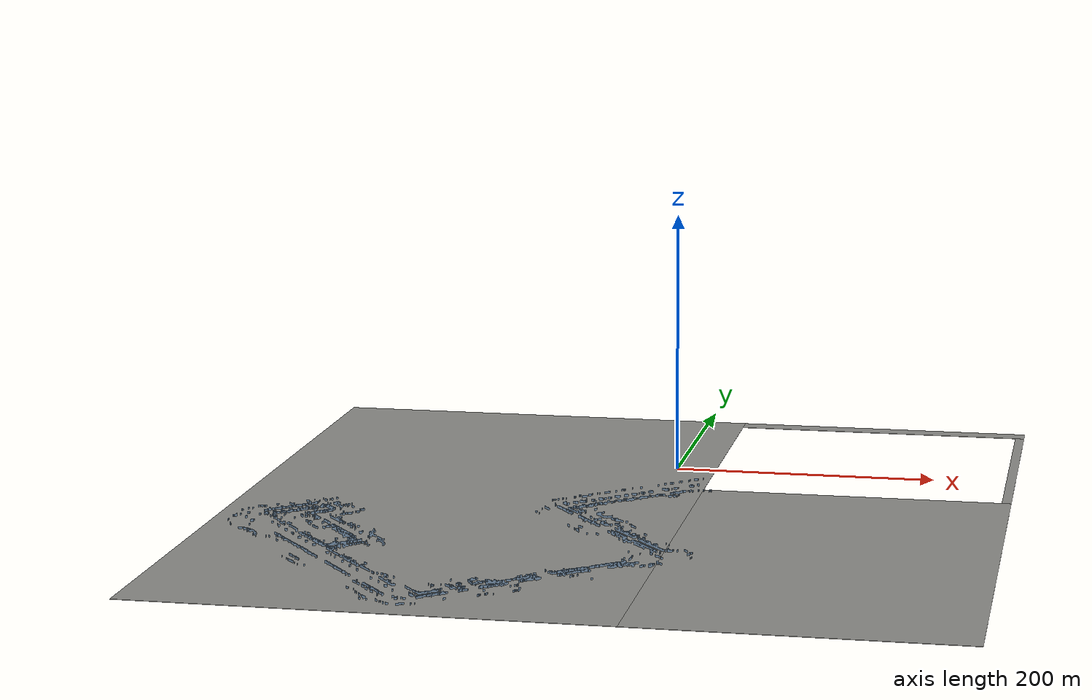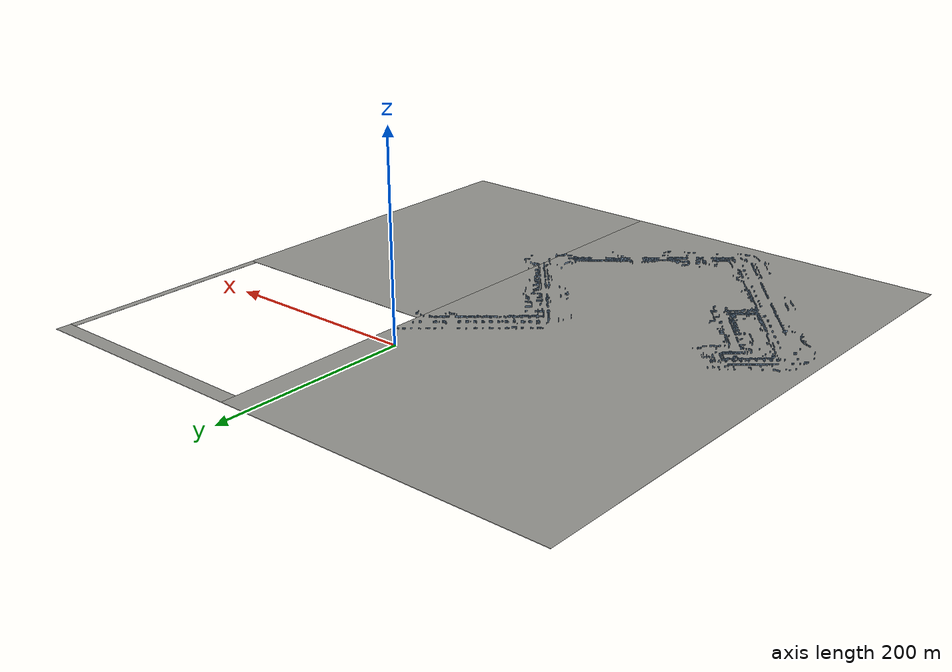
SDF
<?xml version="1.0"?>
<sdf version="1.9">
  <model name="tsukuba_walls">
    <static>true</static>
    <link name="link">
      <collision name="walls_collision">
        <geometry><mesh><uri>model://tsukuba_walls/meshes/walls.obj</uri></mesh></geometry>
      </collision>
      <visual name="walls_visual">
        <geometry><mesh><uri>model://tsukuba_walls/meshes/walls.obj</uri></mesh></geometry>
        <material><ambient>0.45 0.55 0.65 1</ambient><diffuse>0.45 0.55 0.65 1</diffuse><specular>0.05 0.05 0.05 1</specular></material>
      </visual>
      <collision name="ground_0_collision">
        <pose>-140.000 -125.000 -0.610 0 0 0</pose>
        <geometry><box><size>340.000 590.000 0.3</size></box></geometry>
      </collision>
      <visual name="ground_0_visual">
        <pose>-140.000 -125.000 -0.610 0 0 0</pose>
        <geometry><box><size>340.000 590.000 0.3</size></box></geometry>
        <material><ambient>0.62 0.62 0.60 1</ambient><diffuse>0.62 0.62 0.60 1</diffuse><specular>0.05 0.05 0.05 1</specular></material>
      </visual>
      <collision name="ground_1_collision">
        <pose>146.000 -240.000 -0.610 0 0 0</pose>
        <geometry><box><size>232.000 360.000 0.3</size></box></geometry>
      </collision>
      <visual name="ground_1_visual">
        <pose>146.000 -240.000 -0.610 0 0 0</pose>
        <geometry><box><size>232.000 360.000 0.3</size></box></geometry>
        <material><ambient>0.62 0.62 0.60 1</ambient><diffuse>0.62 0.62 0.60 1</diffuse><specular>0.05 0.05 0.05 1</specular></material>
      </visual>
      <collision name="ground_2_collision">
        <pose>146.000 162.500 -0.610 0 0 0</pose>
        <geometry><box><size>232.000 15.000 0.3</size></box></geometry>
      </collision>
      <visual name="ground_2_visual">
        <pose>146.000 162.500 -0.610 0 0 0</pose>
        <geometry><box><size>232.000 15.000 0.3</size></box></geometry>
        <material><ambient>0.62 0.62 0.60 1</ambient><diffuse>0.62 0.62 0.60 1</diffuse><specular>0.05 0.05 0.05 1</specular></material>
      </visual>
      <collision name="ground_3_collision">
        <pose>258.500 47.500 -0.610 0 0 0</pose>
        <geometry><box><size>7.000 215.000 0.3</size></box></geometry>
      </collision>
      <visual name="ground_3_visual">
        <pose>258.500 47.500 -0.610 0 0 0</pose>
        <geometry><box><size>7.000 215.000 0.3</size></box></geometry>
        <material><ambient>0.62 0.62 0.60 1</ambient><diffuse>0.62 0.62 0.60 1</diffuse><specular>0.05 0.05 0.05 1</specular></material>
      </visual>
    </link>
  </model>
</sdf>
